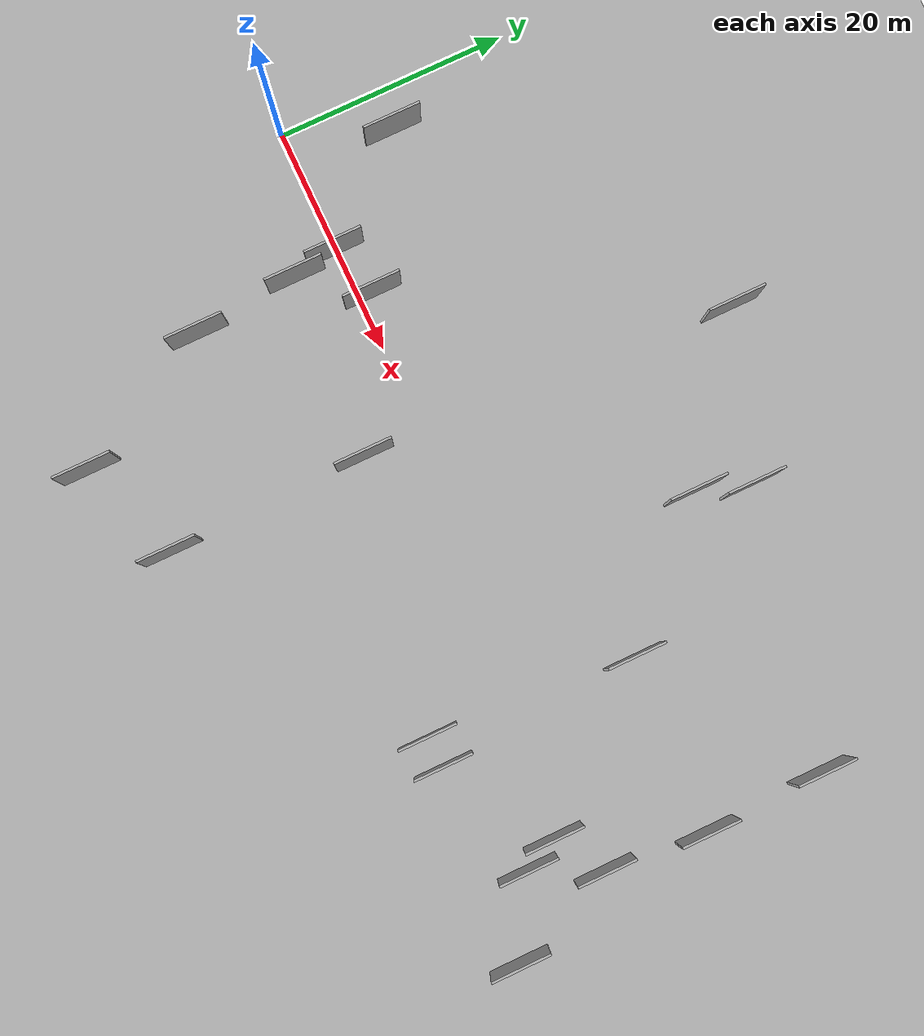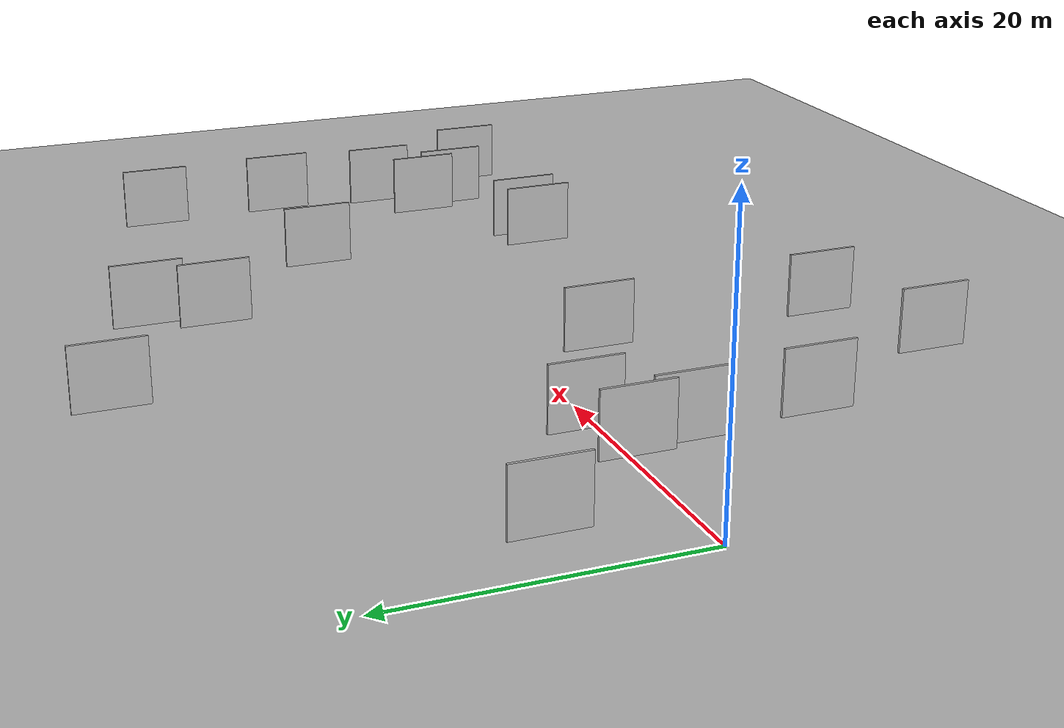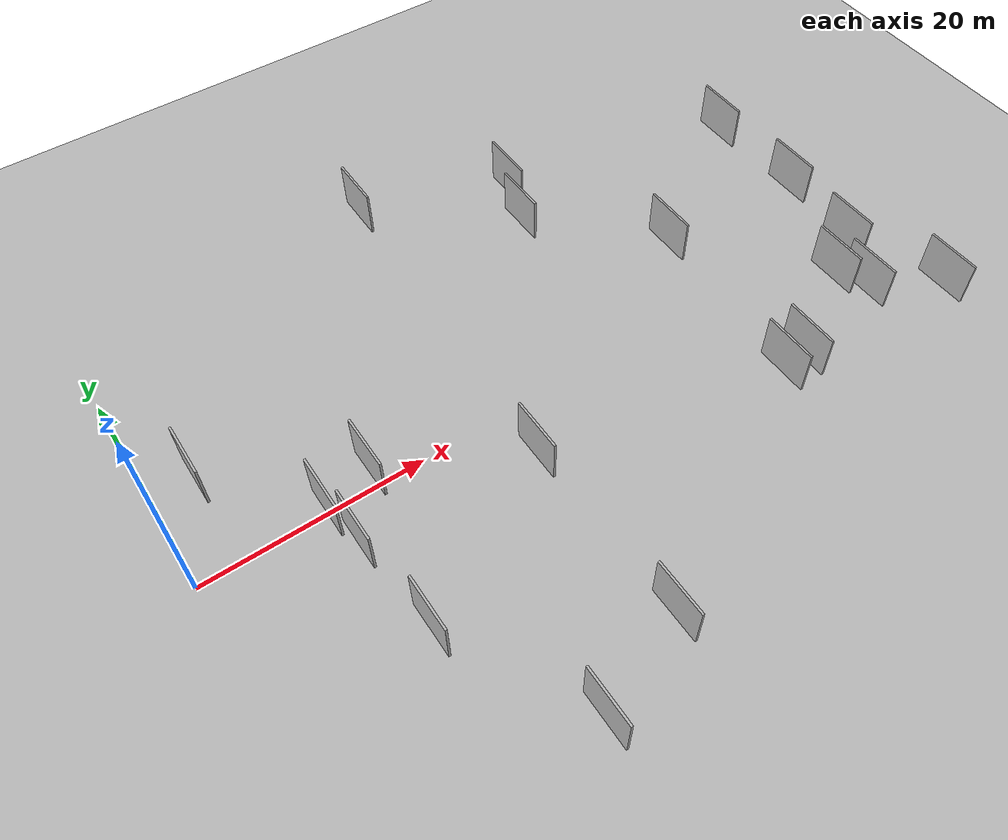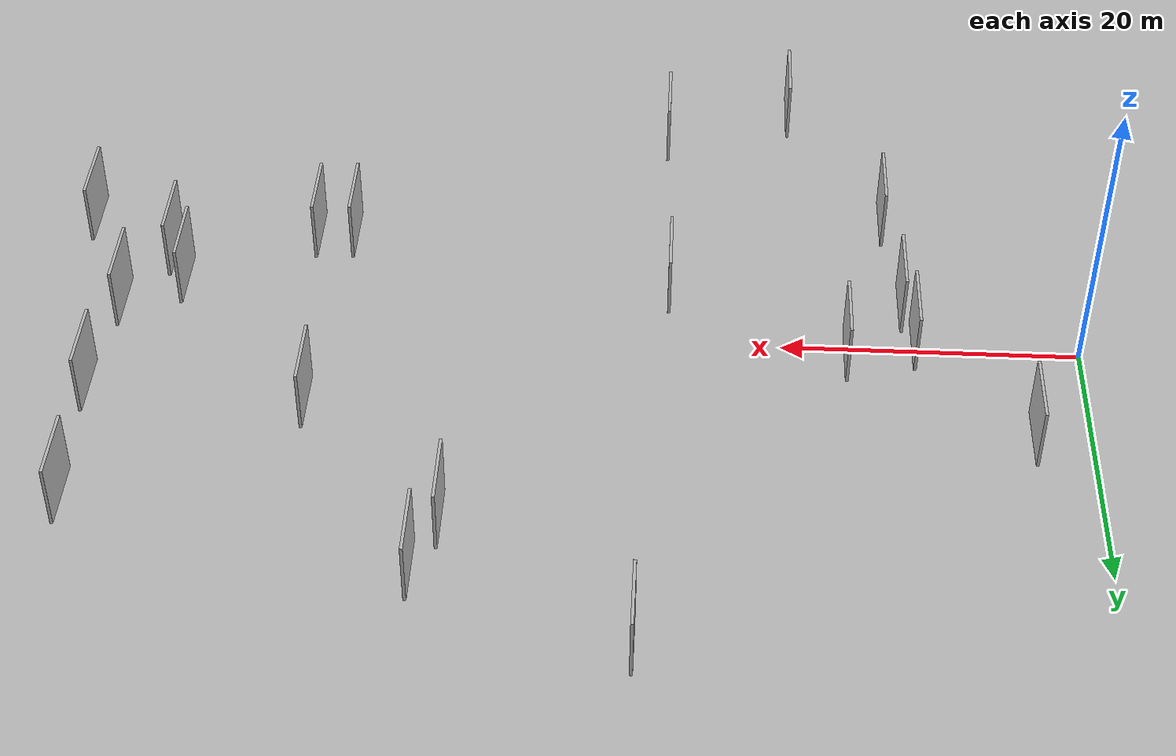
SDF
<?xml version="1.0" encoding="utf-8"?>

<sdf version="1.6">

   <world name="default">

      <gui fullscreen="0">

         <camera name="user_camera">

            <pose>-15 0 4.57585 0 0 0</pose>

            <view_controller>orbit</view_controller>

         </camera>

      </gui>

      <scene>

         <sky>

           <clouds>

             <speed>12</speed>

           </clouds>

         </sky>

         <ambient>0.4 0.4 0.4 1</ambient>

         <background>0.7 0.7 0.7 1</background>

         <shadows>1</shadows>

      </scene>

      <gravity>0 0 -9.8066</gravity>

      <magnetic_field>6e-06 2.3e-05 -4.2e-05</magnetic_field>

      <physics default="0" name="default_physics" type="ode">

         <ode>

            <solver>

               <type>quick</type>

               <iters>10</iters>

               <sor>1.0</sor>

               <use_dynamic_moi_rescaling>0</use_dynamic_moi_rescaling>

            </solver>

            <constraints>

               <cfm>0</cfm>

               <erp>0.2</erp>

               <contact_max_correcting_vel>100</contact_max_correcting_vel>

               <contact_surface_layer>0.001</contact_surface_layer>

            </constraints>

         </ode>

         <max_step_size>0.004</max_step_size>

         <real_time_factor>1</real_time_factor>

         <real_time_update_rate>250</real_time_update_rate>

      </physics>

      <light name="sun" type="directional">

         <cast_shadows>1</cast_shadows>

         <pose>0 0 10 0 0 0</pose>

         <diffuse>0.8 0.8 0.8 1</diffuse>

         <specular>0.2 0.2 0.2 1</specular>

         <attenuation>

            <range>1000</range>

            <constant>0.9</constant>

            <linear>0.01</linear>

            <quadratic>0.001</quadratic>

         </attenuation>

         <direction>-0.5 0.1 -0.9</direction>

      </light>

      <include>

         <name>ground_plane_1</name>

         <uri>model://HANNAS_ground_plane</uri>

         <pose>0 0 0  0 0 0</pose>

      </include>

      <include>

         <name>ground_plane_2</name>

         <uri>model://HANNAS_ground_plane</uri>

         <pose>100 0 0  0 0 0</pose>

      </include>

      <model name="HANNAS_wall_1">

         <static>1</static>

         <pose frame="">19.2604 -25.5647 0.0 0.000000 0.000000 1.570796</pose>

         <link name="link">

            <pose frame="">0 0 2.50 0 0 0</pose>

            <collision name="collision">

               <geometry>

                  <box>

                     <size>5.00 0.2 5.00</size>

                  </box>

               </geometry>

               <max_contacts>10</max_contacts>

               <surface>

                  <contact>

                     <ode/>

                  </contact>

                  <bounce/>

                  <friction>

                     <torsional>

                        <ode/>

                     </torsional>

                     <ode/>

                  </friction>

               </surface>

            </collision>

            <visual name="visual">

               <cast_shadows>0</cast_shadows>

               <geometry>

                  <box>

                     <size>5.00 0.2 5.00</size>

                  </box>

               </geometry>

               <material>

                  <script>

                     <uri>model://HANNAS_wall/materials/scripts</uri>

                     <uri>model://HANNAS_wall/materials/textures</uri>

                     <name>vrc/HANNAS_wall</name>

                  </script>

               </material>

            </visual>

            <self_collide>0</self_collide>

            <enable_wind>0</enable_wind>

            <kinematic>0</kinematic>

         </link>

      </model>

      <model name="HANNAS_wall_2">

         <static>1</static>

         <pose frame="">11.1673 -0.1468 0.0 0.000000 0.000000 1.570796</pose>

         <link name="link">

            <pose frame="">0 0 2.50 0 0 0</pose>

            <collision name="collision">

               <geometry>

                  <box>

                     <size>5.00 0.2 5.00</size>

                  </box>

               </geometry>

               <max_contacts>10</max_contacts>

               <surface>

                  <contact>

                     <ode/>

                  </contact>

                  <bounce/>

                  <friction>

                     <torsional>

                        <ode/>

                     </torsional>

                     <ode/>

                  </friction>

               </surface>

            </collision>

            <visual name="visual">

               <cast_shadows>0</cast_shadows>

               <geometry>

                  <box>

                     <size>5.00 0.2 5.00</size>

                  </box>

               </geometry>

               <material>

                  <script>

                     <uri>model://HANNAS_wall/materials/scripts</uri>

                     <uri>model://HANNAS_wall/materials/textures</uri>

                     <name>vrc/HANNAS_wall</name>

                  </script>

               </material>

            </visual>

            <self_collide>0</self_collide>

            <enable_wind>0</enable_wind>

            <kinematic>0</kinematic>

         </link>

      </model>

      <model name="HANNAS_wall_3">

         <static>1</static>

         <pose frame="">49.9607 -9.9077 0.0 0.000000 0.000000 1.570796</pose>

         <link name="link">

            <pose frame="">0 0 2.50 0 0 0</pose>

            <collision name="collision">

               <geometry>

                  <box>

                     <size>5.00 0.2 5.00</size>

                  </box>

               </geometry>

               <max_contacts>10</max_contacts>

               <surface>

                  <contact>

                     <ode/>

                  </contact>

                  <bounce/>

                  <friction>

                     <torsional>

                        <ode/>

                     </torsional>

                     <ode/>

                  </friction>

               </surface>

            </collision>

            <visual name="visual">

               <cast_shadows>0</cast_shadows>

               <geometry>

                  <box>

                     <size>5.00 0.2 5.00</size>

                  </box>

               </geometry>

               <material>

                  <script>

                     <uri>model://HANNAS_wall/materials/scripts</uri>

                     <uri>model://HANNAS_wall/materials/textures</uri>

                     <name>vrc/HANNAS_wall</name>

                  </script>

               </material>

            </visual>

            <self_collide>0</self_collide>

            <enable_wind>0</enable_wind>

            <kinematic>0</kinematic>

         </link>

      </model>

      <model name="HANNAS_wall_4">

         <static>1</static>

         <pose frame="">3.8619 8.4435 0.0 0.000000 0.000000 1.570796</pose>

         <link name="link">

            <pose frame="">0 0 2.50 0 0 0</pose>

            <collision name="collision">

               <geometry>

                  <box>

                     <size>5.00 0.2 5.00</size>

                  </box>

               </geometry>

               <max_contacts>10</max_contacts>

               <surface>

                  <contact>

                     <ode/>

                  </contact>

                  <bounce/>

                  <friction>

                     <torsional>

                        <ode/>

                     </torsional>

                     <ode/>

                  </friction>

               </surface>

            </collision>

            <visual name="visual">

               <cast_shadows>0</cast_shadows>

               <geometry>

                  <box>

                     <size>5.00 0.2 5.00</size>

                  </box>

               </geometry>

               <material>

                  <script>

                     <uri>model://HANNAS_wall/materials/scripts</uri>

                     <uri>model://HANNAS_wall/materials/textures</uri>

                     <name>vrc/HANNAS_wall</name>

                  </script>

               </material>

            </visual>

            <self_collide>0</self_collide>

            <enable_wind>0</enable_wind>

            <kinematic>0</kinematic>

         </link>

      </model>

      <model name="HANNAS_wall_5">

         <static>1</static>

         <pose frame="">15.7238 1.1339 0.0 0.000000 0.000000 1.570796</pose>

         <link name="link">

            <pose frame="">0 0 2.50 0 0 0</pose>

            <collision name="collision">

               <geometry>

                  <box>

                     <size>5.00 0.2 5.00</size>

                  </box>

               </geometry>

               <max_contacts>10</max_contacts>

               <surface>

                  <contact>

                     <ode/>

                  </contact>

                  <bounce/>

                  <friction>

                     <torsional>

                        <ode/>

                     </torsional>

                     <ode/>

                  </friction>

               </surface>

            </collision>

            <visual name="visual">

               <cast_shadows>0</cast_shadows>

               <geometry>

                  <box>

                     <size>5.00 0.2 5.00</size>

                  </box>

               </geometry>

               <material>

                  <script>

                     <uri>model://HANNAS_wall/materials/scripts</uri>

                     <uri>model://HANNAS_wall/materials/textures</uri>

                     <name>vrc/HANNAS_wall</name>

                  </script>

               </material>

            </visual>

            <self_collide>0</self_collide>

            <enable_wind>0</enable_wind>

            <kinematic>0</kinematic>

         </link>

      </model>

      <model name="HANNAS_wall_6">

         <static>1</static>

         <pose frame="">65.0688 -1.8181 0.0 0.000000 0.000000 1.570796</pose>

         <link name="link">

            <pose frame="">0 0 2.50 0 0 0</pose>

            <collision name="collision">

               <geometry>

                  <box>

                     <size>5.00 0.2 5.00</size>

                  </box>

               </geometry>

               <max_contacts>10</max_contacts>

               <surface>

                  <contact>

                     <ode/>

                  </contact>

                  <bounce/>

                  <friction>

                     <torsional>

                        <ode/>

                     </torsional>

                     <ode/>

                  </friction>

               </surface>

            </collision>

            <visual name="visual">

               <cast_shadows>0</cast_shadows>

               <geometry>

                  <box>

                     <size>5.00 0.2 5.00</size>

                  </box>

               </geometry>

               <material>

                  <script>

                     <uri>model://HANNAS_wall/materials/scripts</uri>

                     <uri>model://HANNAS_wall/materials/textures</uri>

                     <name>vrc/HANNAS_wall</name>

                  </script>

               </material>

            </visual>

            <self_collide>0</self_collide>

            <enable_wind>0</enable_wind>

            <kinematic>0</kinematic>

         </link>

      </model>

      <model name="HANNAS_wall_7">

         <static>1</static>

         <pose frame="">61.1487 -4.3711 0.0 0.000000 0.000000 1.570796</pose>

         <link name="link">

            <pose frame="">0 0 2.50 0 0 0</pose>

            <collision name="collision">

               <geometry>

                  <box>

                     <size>5.00 0.2 5.00</size>

                  </box>

               </geometry>

               <max_contacts>10</max_contacts>

               <surface>

                  <contact>

                     <ode/>

                  </contact>

                  <bounce/>

                  <friction>

                     <torsional>

                        <ode/>

                     </torsional>

                     <ode/>

                  </friction>

               </surface>

            </collision>

            <visual name="visual">

               <cast_shadows>0</cast_shadows>

               <geometry>

                  <box>

                     <size>5.00 0.2 5.00</size>

                  </box>

               </geometry>

               <material>

                  <script>

                     <uri>model://HANNAS_wall/materials/scripts</uri>

                     <uri>model://HANNAS_wall/materials/textures</uri>

                     <name>vrc/HANNAS_wall</name>

                  </script>

               </material>

            </visual>

            <self_collide>0</self_collide>

            <enable_wind>0</enable_wind>

            <kinematic>0</kinematic>

         </link>

      </model>

      <model name="HANNAS_wall_8">

         <static>1</static>

         <pose frame="">62.4703 -7.1964 0.0 0.000000 0.000000 1.570796</pose>

         <link name="link">

            <pose frame="">0 0 2.50 0 0 0</pose>

            <collision name="collision">

               <geometry>

                  <box>

                     <size>5.00 0.2 5.00</size>

                  </box>

               </geometry>

               <max_contacts>10</max_contacts>

               <surface>

                  <contact>

                     <ode/>

                  </contact>

                  <bounce/>

                  <friction>

                     <torsional>

                        <ode/>

                     </torsional>

                     <ode/>

                  </friction>

               </surface>

            </collision>

            <visual name="visual">

               <cast_shadows>0</cast_shadows>

               <geometry>

                  <box>

                     <size>5.00 0.2 5.00</size>

                  </box>

               </geometry>

               <material>

                  <script>

                     <uri>model://HANNAS_wall/materials/scripts</uri>

                     <uri>model://HANNAS_wall/materials/textures</uri>

                     <name>vrc/HANNAS_wall</name>

                  </script>

               </material>

            </visual>

            <self_collide>0</self_collide>

            <enable_wind>0</enable_wind>

            <kinematic>0</kinematic>

         </link>

      </model>

      <model name="HANNAS_wall_9">

         <static>1</static>

         <pose frame="">11.8739 -3.9553 0.0 0.000000 0.000000 1.570796</pose>

         <link name="link">

            <pose frame="">0 0 2.50 0 0 0</pose>

            <collision name="collision">

               <geometry>

                  <box>

                     <size>5.00 0.2 5.00</size>

                  </box>

               </geometry>

               <max_contacts>10</max_contacts>

               <surface>

                  <contact>

                     <ode/>

                  </contact>

                  <bounce/>

                  <friction>

                     <torsional>

                        <ode/>

                     </torsional>

                     <ode/>

                  </friction>

               </surface>

            </collision>

            <visual name="visual">

               <cast_shadows>0</cast_shadows>

               <geometry>

                  <box>

                     <size>5.00 0.2 5.00</size>

                  </box>

               </geometry>

               <material>

                  <script>

                     <uri>model://HANNAS_wall/materials/scripts</uri>

                     <uri>model://HANNAS_wall/materials/textures</uri>

                     <name>vrc/HANNAS_wall</name>

                  </script>

               </material>

            </visual>

            <self_collide>0</self_collide>

            <enable_wind>0</enable_wind>

            <kinematic>0</kinematic>

         </link>

      </model>

      <model name="HANNAS_wall_10">

         <static>1</static>

         <pose frame="">29.1301 27.0219 0.0 0.000000 0.000000 1.570796</pose>

         <link name="link">

            <pose frame="">0 0 2.50 0 0 0</pose>

            <collision name="collision">

               <geometry>

                  <box>

                     <size>5.00 0.2 5.00</size>

                  </box>

               </geometry>

               <max_contacts>10</max_contacts>

               <surface>

                  <contact>

                     <ode/>

                  </contact>

                  <bounce/>

                  <friction>

                     <torsional>

                        <ode/>

                     </torsional>

                     <ode/>

                  </friction>

               </surface>

            </collision>

            <visual name="visual">

               <cast_shadows>0</cast_shadows>

               <geometry>

                  <box>

                     <size>5.00 0.2 5.00</size>

                  </box>

               </geometry>

               <material>

                  <script>

                     <uri>model://HANNAS_wall/materials/scripts</uri>

                     <uri>model://HANNAS_wall/materials/textures</uri>

                     <name>vrc/HANNAS_wall</name>

                  </script>

               </material>

            </visual>

            <self_collide>0</self_collide>

            <enable_wind>0</enable_wind>

            <kinematic>0</kinematic>

         </link>

      </model>

      <model name="HANNAS_wall_11">

         <static>1</static>

         <pose frame="">68.6315 -10.7822 0.0 0.000000 0.000000 1.570796</pose>

         <link name="link">

            <pose frame="">0 0 2.50 0 0 0</pose>

            <collision name="collision">

               <geometry>

                  <box>

                     <size>5.00 0.2 5.00</size>

                  </box>

               </geometry>

               <max_contacts>10</max_contacts>

               <surface>

                  <contact>

                     <ode/>

                  </contact>

                  <bounce/>

                  <friction>

                     <torsional>

                        <ode/>

                     </torsional>

                     <ode/>

                  </friction>

               </surface>

            </collision>

            <visual name="visual">

               <cast_shadows>0</cast_shadows>

               <geometry>

                  <box>

                     <size>5.00 0.2 5.00</size>

                  </box>

               </geometry>

               <material>

                  <script>

                     <uri>model://HANNAS_wall/materials/scripts</uri>

                     <uri>model://HANNAS_wall/materials/textures</uri>

                     <name>vrc/HANNAS_wall</name>

                  </script>

               </material>

            </visual>

            <self_collide>0</self_collide>

            <enable_wind>0</enable_wind>

            <kinematic>0</kinematic>

         </link>

      </model>

      <model name="HANNAS_wall_12">

         <static>1</static>

         <pose frame="">65.4357 16.7715 0.0 0.000000 0.000000 1.570796</pose>

         <link name="link">

            <pose frame="">0 0 2.50 0 0 0</pose>

            <collision name="collision">

               <geometry>

                  <box>

                     <size>5.00 0.2 5.00</size>

                  </box>

               </geometry>

               <max_contacts>10</max_contacts>

               <surface>

                  <contact>

                     <ode/>

                  </contact>

                  <bounce/>

                  <friction>

                     <torsional>

                        <ode/>

                     </torsional>

                     <ode/>

                  </friction>

               </surface>

            </collision>

            <visual name="visual">

               <cast_shadows>0</cast_shadows>

               <geometry>

                  <box>

                     <size>5.00 0.2 5.00</size>

                  </box>

               </geometry>

               <material>

                  <script>

                     <uri>model://HANNAS_wall/materials/scripts</uri>

                     <uri>model://HANNAS_wall/materials/textures</uri>

                     <name>vrc/HANNAS_wall</name>

                  </script>

               </material>

            </visual>

            <self_collide>0</self_collide>

            <enable_wind>0</enable_wind>

            <kinematic>0</kinematic>

         </link>

      </model>

      <model name="HANNAS_wall_13">

         <static>1</static>

         <pose frame="">65.8063 6.6797 0.0 0.000000 0.000000 1.570796</pose>

         <link name="link">

            <pose frame="">0 0 2.50 0 0 0</pose>

            <collision name="collision">

               <geometry>

                  <box>

                     <size>5.00 0.2 5.00</size>

                  </box>

               </geometry>

               <max_contacts>10</max_contacts>

               <surface>

                  <contact>

                     <ode/>

                  </contact>

                  <bounce/>

                  <friction>

                     <torsional>

                        <ode/>

                     </torsional>

                     <ode/>

                  </friction>

               </surface>

            </collision>

            <visual name="visual">

               <cast_shadows>0</cast_shadows>

               <geometry>

                  <box>

                     <size>5.00 0.2 5.00</size>

                  </box>

               </geometry>

               <material>

                  <script>

                     <uri>model://HANNAS_wall/materials/scripts</uri>

                     <uri>model://HANNAS_wall/materials/textures</uri>

                     <name>vrc/HANNAS_wall</name>

                  </script>

               </material>

            </visual>

            <self_collide>0</self_collide>

            <enable_wind>0</enable_wind>

            <kinematic>0</kinematic>

         </link>

      </model>

      <model name="HANNAS_wall_14">

         <static>1</static>

         <pose frame="">27.6433 -5.0793 0.0 0.000000 0.000000 1.570796</pose>

         <link name="link">

            <pose frame="">0 0 2.50 0 0 0</pose>

            <collision name="collision">

               <geometry>

                  <box>

                     <size>5.00 0.2 5.00</size>

                  </box>

               </geometry>

               <max_contacts>10</max_contacts>

               <surface>

                  <contact>

                     <ode/>

                  </contact>

                  <bounce/>

                  <friction>

                     <torsional>

                        <ode/>

                     </torsional>

                     <ode/>

                  </friction>

               </surface>

            </collision>

            <visual name="visual">

               <cast_shadows>0</cast_shadows>

               <geometry>

                  <box>

                     <size>5.00 0.2 5.00</size>

                  </box>

               </geometry>

               <material>

                  <script>

                     <uri>model://HANNAS_wall/materials/scripts</uri>

                     <uri>model://HANNAS_wall/materials/textures</uri>

                     <name>vrc/HANNAS_wall</name>

                  </script>

               </material>

            </visual>

            <self_collide>0</self_collide>

            <enable_wind>0</enable_wind>

            <kinematic>0</kinematic>

         </link>

      </model>

      <model name="HANNAS_wall_15">

         <static>1</static>

         <pose frame="">51.2115 7.4638 0.0 0.000000 0.000000 1.570796</pose>

         <link name="link">

            <pose frame="">0 0 2.50 0 0 0</pose>

            <collision name="collision">

               <geometry>

                  <box>

                     <size>5.00 0.2 5.00</size>

                  </box>

               </geometry>

               <max_contacts>10</max_contacts>

               <surface>

                  <contact>

                     <ode/>

                  </contact>

                  <bounce/>

                  <friction>

                     <torsional>

                        <ode/>

                     </torsional>

                     <ode/>

                  </friction>

               </surface>

            </collision>

            <visual name="visual">

               <cast_shadows>0</cast_shadows>

               <geometry>

                  <box>

                     <size>5.00 0.2 5.00</size>

                  </box>

               </geometry>

               <material>

                  <script>

                     <uri>model://HANNAS_wall/materials/scripts</uri>

                     <uri>model://HANNAS_wall/materials/textures</uri>

                     <name>vrc/HANNAS_wall</name>

                  </script>

               </material>

            </visual>

            <self_collide>0</self_collide>

            <enable_wind>0</enable_wind>

            <kinematic>0</kinematic>

         </link>

      </model>

      <model name="HANNAS_wall_16">

         <static>1</static>

         <pose frame="">41.4330 17.6081 0.0 0.000000 0.000000 1.570796</pose>

         <link name="link">

            <pose frame="">0 0 2.50 0 0 0</pose>

            <collision name="collision">

               <geometry>

                  <box>

                     <size>5.00 0.2 5.00</size>

                  </box>

               </geometry>

               <max_contacts>10</max_contacts>

               <surface>

                  <contact>

                     <ode/>

                  </contact>

                  <bounce/>

                  <friction>

                     <torsional>

                        <ode/>

                     </torsional>

                     <ode/>

                  </friction>

               </surface>

            </collision>

            <visual name="visual">

               <cast_shadows>0</cast_shadows>

               <geometry>

                  <box>

                     <size>5.00 0.2 5.00</size>

                  </box>

               </geometry>

               <material>

                  <script>

                     <uri>model://HANNAS_wall/materials/scripts</uri>

                     <uri>model://HANNAS_wall/materials/textures</uri>

                     <name>vrc/HANNAS_wall</name>

                  </script>

               </material>

            </visual>

            <self_collide>0</self_collide>

            <enable_wind>0</enable_wind>

            <kinematic>0</kinematic>

         </link>

      </model>

      <model name="HANNAS_wall_17">

         <static>1</static>

         <pose frame="">12.8066 -13.0829 0.0 0.000000 0.000000 1.570796</pose>

         <link name="link">

            <pose frame="">0 0 2.50 0 0 0</pose>

            <collision name="collision">

               <geometry>

                  <box>

                     <size>5.00 0.2 5.00</size>

                  </box>

               </geometry>

               <max_contacts>10</max_contacts>

               <surface>

                  <contact>

                     <ode/>

                  </contact>

                  <bounce/>

                  <friction>

                     <torsional>

                        <ode/>

                     </torsional>

                     <ode/>

                  </friction>

               </surface>

            </collision>

            <visual name="visual">

               <cast_shadows>0</cast_shadows>

               <geometry>

                  <box>

                     <size>5.00 0.2 5.00</size>

                  </box>

               </geometry>

               <material>

                  <script>

                     <uri>model://HANNAS_wall/materials/scripts</uri>

                     <uri>model://HANNAS_wall/materials/textures</uri>

                     <name>vrc/HANNAS_wall</name>

                  </script>

               </material>

            </visual>

            <self_collide>0</self_collide>

            <enable_wind>0</enable_wind>

            <kinematic>0</kinematic>

         </link>

      </model>

      <model name="HANNAS_wall_18">

         <static>1</static>

         <pose frame="">28.0903 -22.2286 0.0 0.000000 0.000000 1.570796</pose>

         <link name="link">

            <pose frame="">0 0 2.50 0 0 0</pose>

            <collision name="collision">

               <geometry>

                  <box>

                     <size>5.00 0.2 5.00</size>

                  </box>

               </geometry>

               <max_contacts>10</max_contacts>

               <surface>

                  <contact>

                     <ode/>

                  </contact>

                  <bounce/>

                  <friction>

                     <torsional>

                        <ode/>

                     </torsional>

                     <ode/>

                  </friction>

               </surface>

            </collision>

            <visual name="visual">

               <cast_shadows>0</cast_shadows>

               <geometry>

                  <box>

                     <size>5.00 0.2 5.00</size>

                  </box>

               </geometry>

               <material>

                  <script>

                     <uri>model://HANNAS_wall/materials/scripts</uri>

                     <uri>model://HANNAS_wall/materials/textures</uri>

                     <name>vrc/HANNAS_wall</name>

                  </script>

               </material>

            </visual>

            <self_collide>0</self_collide>

            <enable_wind>0</enable_wind>

            <kinematic>0</kinematic>

         </link>

      </model>

      <model name="HANNAS_wall_19">

         <static>1</static>

         <pose frame="">52.5381 -9.7431 0.0 0.000000 0.000000 1.570796</pose>

         <link name="link">

            <pose frame="">0 0 2.50 0 0 0</pose>

            <collision name="collision">

               <geometry>

                  <box>

                     <size>5.00 0.2 5.00</size>

                  </box>

               </geometry>

               <max_contacts>10</max_contacts>

               <surface>

                  <contact>

                     <ode/>

                  </contact>

                  <bounce/>

                  <friction>

                     <torsional>

                        <ode/>

                     </torsional>

                     <ode/>

                  </friction>

               </surface>

            </collision>

            <visual name="visual">

               <cast_shadows>0</cast_shadows>

               <geometry>

                  <box>

                     <size>5.00 0.2 5.00</size>

                  </box>

               </geometry>

               <material>

                  <script>

                     <uri>model://HANNAS_wall/materials/scripts</uri>

                     <uri>model://HANNAS_wall/materials/textures</uri>

                     <name>vrc/HANNAS_wall</name>

                  </script>

               </material>

            </visual>

            <self_collide>0</self_collide>

            <enable_wind>0</enable_wind>

            <kinematic>0</kinematic>

         </link>

      </model>

      <model name="HANNAS_wall_20">

         <static>1</static>

         <pose frame="">42.8923 21.9459 0.0 0.000000 0.000000 1.570796</pose>

         <link name="link">

            <pose frame="">0 0 2.50 0 0 0</pose>

            <collision name="collision">

               <geometry>

                  <box>

                     <size>5.00 0.2 5.00</size>

                  </box>

               </geometry>

               <max_contacts>10</max_contacts>

               <surface>

                  <contact>

                     <ode/>

                  </contact>

                  <bounce/>

                  <friction>

                     <torsional>

                        <ode/>

                     </torsional>

                     <ode/>

                  </friction>

               </surface>

            </collision>

            <visual name="visual">

               <cast_shadows>0</cast_shadows>

               <geometry>

                  <box>

                     <size>5.00 0.2 5.00</size>

                  </box>

               </geometry>

               <material>

                  <script>

                     <uri>model://HANNAS_wall/materials/scripts</uri>

                     <uri>model://HANNAS_wall/materials/textures</uri>

                     <name>vrc/HANNAS_wall</name>

                  </script>

               </material>

            </visual>

            <self_collide>0</self_collide>

            <enable_wind>0</enable_wind>

            <kinematic>0</kinematic>

         </link>

      </model>

   </world>

</sdf>

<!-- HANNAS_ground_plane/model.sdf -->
<sdf version="1.4">
<model name="HANNAS_ground_plane">
  <static>true</static>
    <link name="link">
      <collision name="collision">
        <geometry>
          <plane>
            <normal>0 0 1</normal>
            <size>1000 1000</size>
          </plane>
        </geometry>
        <surface>
          <friction>
            <ode>
              <mu>100</mu>
              <mu2>50</mu2>
            </ode>
          </friction>
        </surface>
      </collision>
      <visual name="visual">
        <cast_shadows>false</cast_shadows>
        <geometry>
          <plane>
            <normal>0 0 1</normal>
            <size>1000 1000</size>
          </plane>
        </geometry>
        <material>
          <script>
            <uri>model://HANNAS_ground_plane/materials/scripts/HANNAS_ground_plane.material</uri>
	    <uri>model://HANNAS_ground_plane/materials/textures</uri>
            <name>HANNASGroundPlane/Image</name>
          </script>
        </material>
      </visual>
    </link>
  </model>
</sdf>
